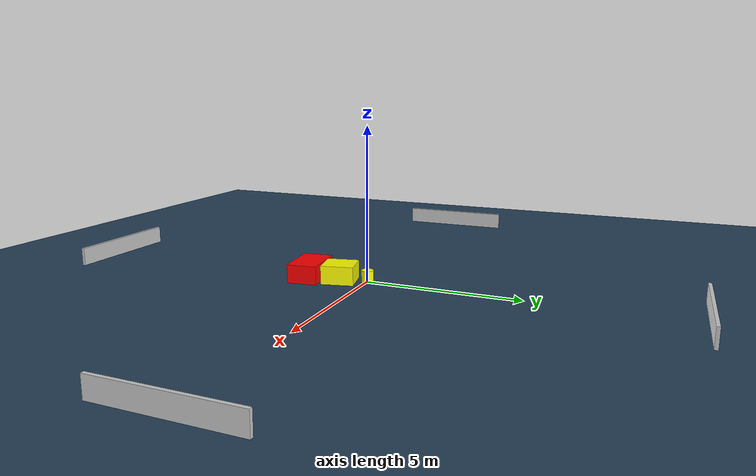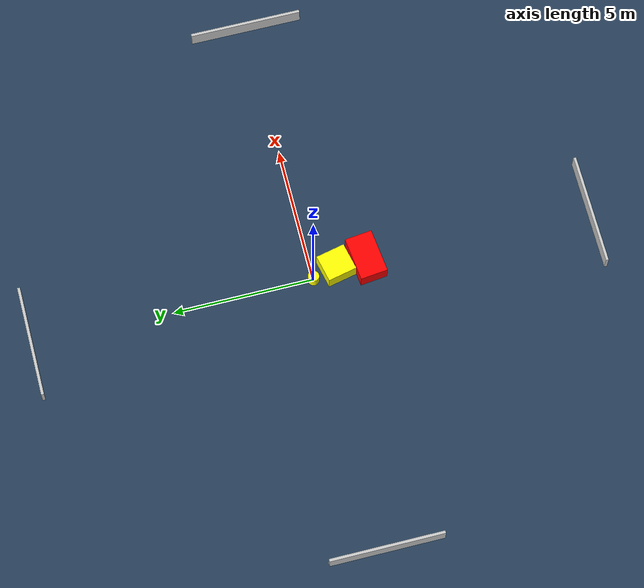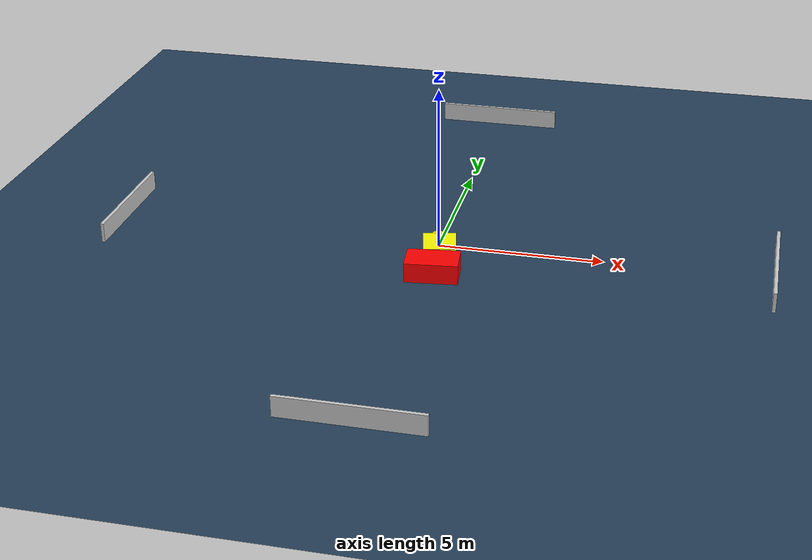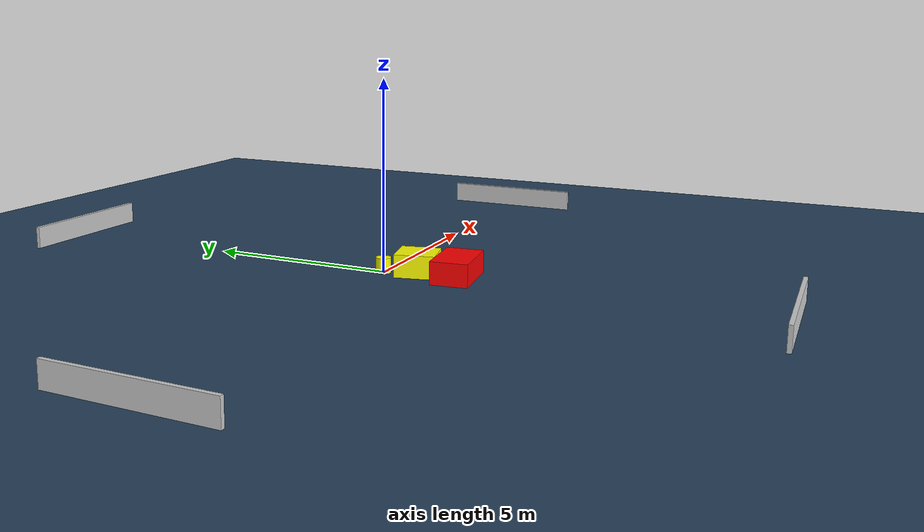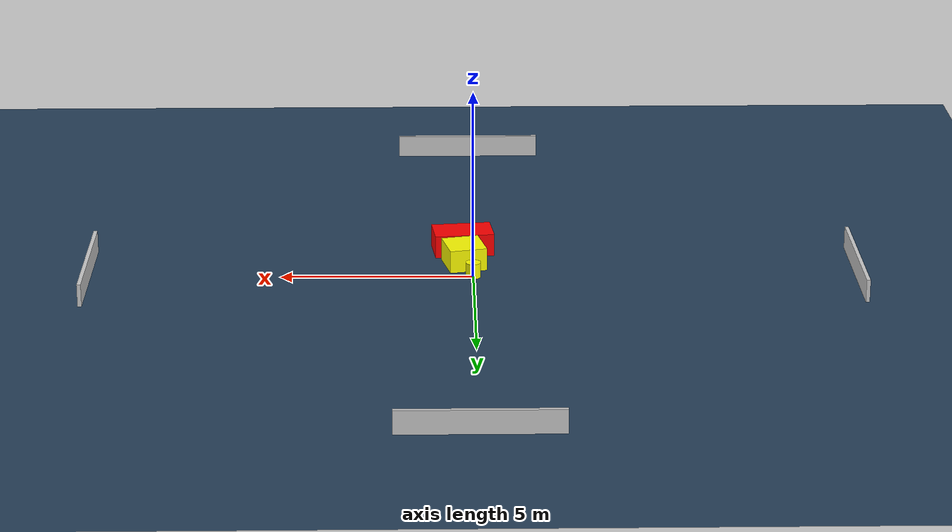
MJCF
<?xml version="1.0" ?>
<mujoco model="generated_environment">
  <option timestep="0.01" integrator="RK4" cone="elliptic"/>
  <default>
    <geom density="1"/>
  </default>
  <asset>
    <texture builtin="gradient" height="3072" name="skybox" rgb1="0.3 0.5 0.7" rgb2="0 0 0" type="skybox" width="512"/>
    <texture builtin="checker" height="300" name="groundplane" rgb1="0.2 0.3 0.4" rgb2="0.1 0.2 0.3" type="2d" width="300"/>
    <material name="groundplane" reflectance="0.2" texrepeat="5 5" texture="groundplane"/>
  </asset>
  <worldbody>
    <light dir="0 0 -1" directional="true" pos="0 0 1.5"/>
    <geom condim="3" friction="0.5 0.005 0.001" material="groundplane" name="floor" pos="0 0 0" size="0 0 0.05" type="plane"/>
    <body name="walls">
      <geom name="wall_1" condim="4" pos="-10.0 0.0 0.3" rgba="0.800000011920929 0.800000011920929 0.800000011920929 1.0" size="0.05 2.0 0.3" type="box"/>
      <geom name="wall_2" condim="4" pos="10.0 0.0 0.3" rgba="0.800000011920929 0.800000011920929 0.800000011920929 1.0" size="0.05 2.0 0.3" type="box"/>
      <geom name="wall_3" condim="4" pos="0.0 -10.0 0.3" rgba="0.800000011920929 0.800000011920929 0.800000011920929 1.0" size="2.0 0.05 0.3" type="box"/>
      <geom name="wall_4" condim="4" pos="0.0 10.0 0.3" rgba="0.800000011920929 0.800000011920929 0.800000011920929 1.0" size="2.0 0.05 0.3" type="box"/>
    </body>
    <body name="robot">
      <joint name="joint_x" type="slide" pos="0 0 0" axis="1 0 0"/>
      <joint name="joint_y" type="slide" pos="0 0 0" axis="0 1 0"/>
      <geom name="robot" type="cylinder" pos="0.0 0.0 0.2" size="0.2 0.2 0.0" mass="5.0" friction="1.0 0.005 0.0001" condim="4" rgba="1.0 1.0 0.0 1.0"/>
    </body>
    <body name="obstacle_1_movable">
      <geom name="obstacle_1_movable" condim="4" pos="0.22221583556972244 -0.872545248443227 0.3" euler="0 0 282.45783492576084" friction="0.0 0.005 0.001" rgba="1.0 1.0 0.0 1.0" size="0.5272837169914752 0.4928043745397559 0.3" type="box" mass="0.1"/>
      <joint type="free"/>
    </body>
    <body name="obstacle_2_static">
      <geom name="obstacle_2_static" condim="4" pos="0.2456239345038842 -1.9479180224194415 0.3" euler="0 0 276.4087691458054" friction="0.0 0.005 0.001" rgba="1.0 0.0 0.0 1.0" size="0.48926576789285336 0.7863693878516649 0.3" type="box"/>
    </body>
  </worldbody>
  <actuator>
    <motor name="actuator_x" joint="joint_x" gear="1" ctrlrange="-1 1"/>
    <motor name="actuator_y" joint="joint_y" gear="1" ctrlrange="-1 1"/>
  </actuator>
</mujoco>
